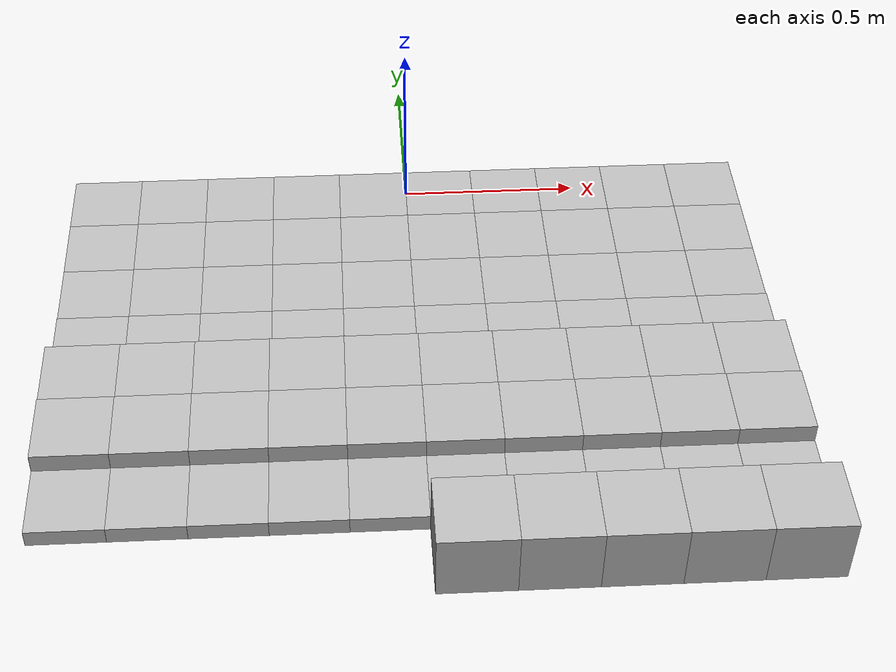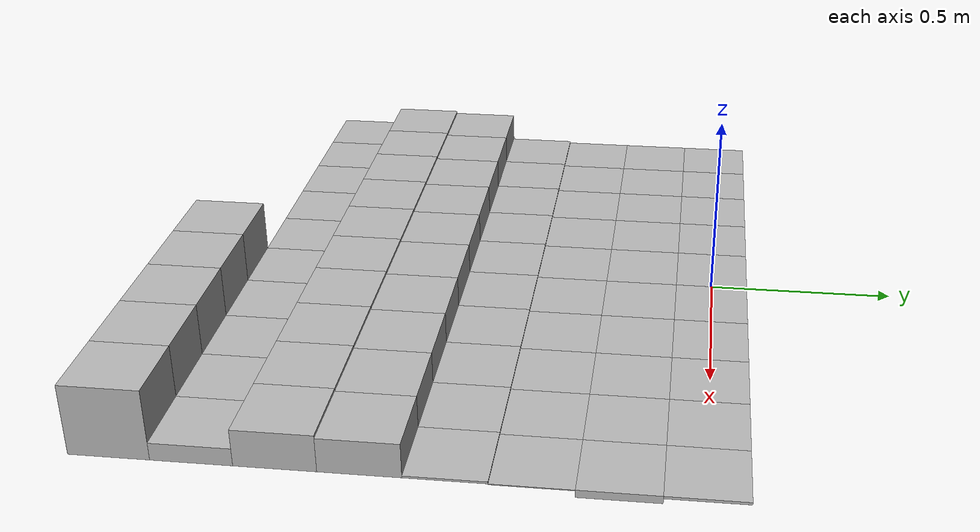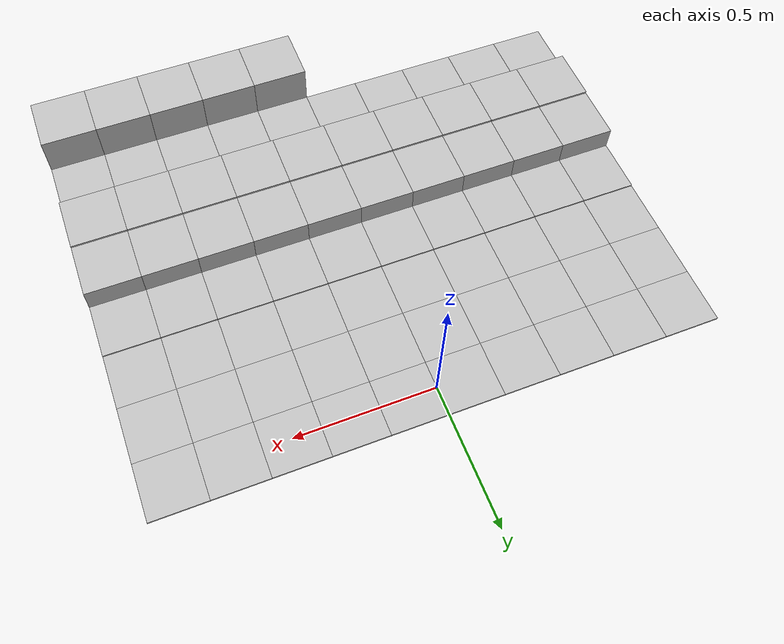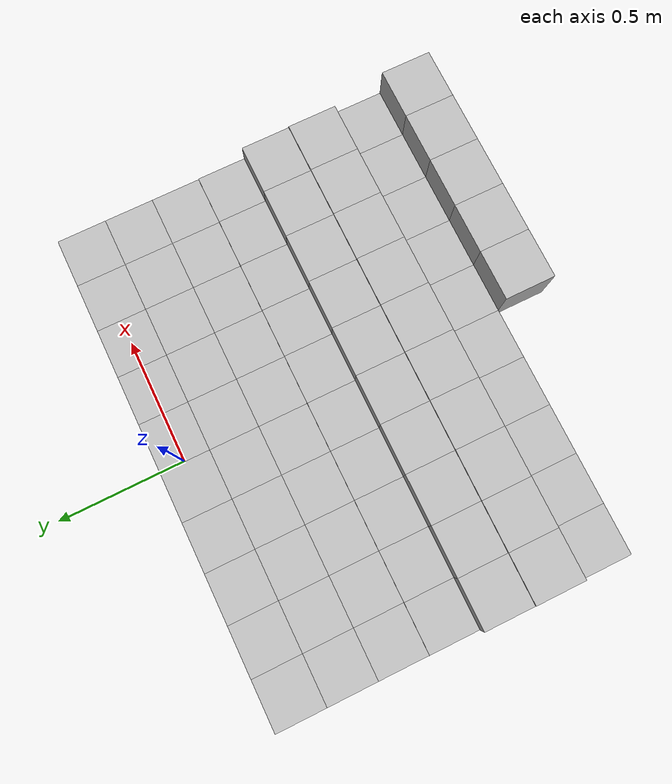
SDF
<sdf version="1.6">
 <model name="Terrain">
  <static>true</static>
  <link name="box_0_0">
   <pose>-0.9 0.0 -0.00342435105275 0 0 0</pose>
   <inertial>
    <mass>1.0</mass>
    <inertia><ixx>0.0</ixx><ixy>0.0</ixy><ixz>0.0</ixz><iyy>0.0</iyy><iyz>0.0</iyz><izz>0.0</izz></inertia>
   </inertial>
   <collision name="collision"><geometry><box><size>0.2 0.2 -0.0068487021055</size></box></geometry></collision>
   <visual name="visual"><geometry><box><size>0.2 0.2 -0.0068487021055</size></box></geometry></visual>
  </link>
  <link name="box_0_1">
   <pose>-0.7 0.0 -0.00342435105275 0 0 0</pose>
   <inertial>
    <mass>1.0</mass>
    <inertia><ixx>0.0</ixx><ixy>0.0</ixy><ixz>0.0</ixz><iyy>0.0</iyy><iyz>0.0</iyz><izz>0.0</izz></inertia>
   </inertial>
   <collision name="collision"><geometry><box><size>0.2 0.2 -0.0068487021055</size></box></geometry></collision>
   <visual name="visual"><geometry><box><size>0.2 0.2 -0.0068487021055</size></box></geometry></visual>
  </link>
  <link name="box_0_2">
   <pose>-0.5 0.0 -0.00342435105275 0 0 0</pose>
   <inertial>
    <mass>1.0</mass>
    <inertia><ixx>0.0</ixx><ixy>0.0</ixy><ixz>0.0</ixz><iyy>0.0</iyy><iyz>0.0</iyz><izz>0.0</izz></inertia>
   </inertial>
   <collision name="collision"><geometry><box><size>0.2 0.2 -0.0068487021055</size></box></geometry></collision>
   <visual name="visual"><geometry><box><size>0.2 0.2 -0.0068487021055</size></box></geometry></visual>
  </link>
  <link name="box_0_3">
   <pose>-0.3 0.0 -0.00342435105275 0 0 0</pose>
   <inertial>
    <mass>1.0</mass>
    <inertia><ixx>0.0</ixx><ixy>0.0</ixy><ixz>0.0</ixz><iyy>0.0</iyy><iyz>0.0</iyz><izz>0.0</izz></inertia>
   </inertial>
   <collision name="collision"><geometry><box><size>0.2 0.2 -0.0068487021055</size></box></geometry></collision>
   <visual name="visual"><geometry><box><size>0.2 0.2 -0.0068487021055</size></box></geometry></visual>
  </link>
  <link name="box_0_4">
   <pose>-0.1 0.0 -0.00342435105275 0 0 0</pose>
   <inertial>
    <mass>1.0</mass>
    <inertia><ixx>0.0</ixx><ixy>0.0</ixy><ixz>0.0</ixz><iyy>0.0</iyy><iyz>0.0</iyz><izz>0.0</izz></inertia>
   </inertial>
   <collision name="collision"><geometry><box><size>0.2 0.2 -0.0068487021055</size></box></geometry></collision>
   <visual name="visual"><geometry><box><size>0.2 0.2 -0.0068487021055</size></box></geometry></visual>
  </link>
  <link name="box_0_5">
   <pose>0.1 0.0 -0.00342435105275 0 0 0</pose>
   <inertial>
    <mass>1.0</mass>
    <inertia><ixx>0.0</ixx><ixy>0.0</ixy><ixz>0.0</ixz><iyy>0.0</iyy><iyz>0.0</iyz><izz>0.0</izz></inertia>
   </inertial>
   <collision name="collision"><geometry><box><size>0.2 0.2 -0.0068487021055</size></box></geometry></collision>
   <visual name="visual"><geometry><box><size>0.2 0.2 -0.0068487021055</size></box></geometry></visual>
  </link>
  <link name="box_0_6">
   <pose>0.3 0.0 -0.00342435105275 0 0 0</pose>
   <inertial>
    <mass>1.0</mass>
    <inertia><ixx>0.0</ixx><ixy>0.0</ixy><ixz>0.0</ixz><iyy>0.0</iyy><iyz>0.0</iyz><izz>0.0</izz></inertia>
   </inertial>
   <collision name="collision"><geometry><box><size>0.2 0.2 -0.0068487021055</size></box></geometry></collision>
   <visual name="visual"><geometry><box><size>0.2 0.2 -0.0068487021055</size></box></geometry></visual>
  </link>
  <link name="box_0_7">
   <pose>0.5 0.0 -0.00342435105275 0 0 0</pose>
   <inertial>
    <mass>1.0</mass>
    <inertia><ixx>0.0</ixx><ixy>0.0</ixy><ixz>0.0</ixz><iyy>0.0</iyy><iyz>0.0</iyz><izz>0.0</izz></inertia>
   </inertial>
   <collision name="collision"><geometry><box><size>0.2 0.2 -0.0068487021055</size></box></geometry></collision>
   <visual name="visual"><geometry><box><size>0.2 0.2 -0.0068487021055</size></box></geometry></visual>
  </link>
  <link name="box_0_8">
   <pose>0.7 0.0 -0.00342435105275 0 0 0</pose>
   <inertial>
    <mass>1.0</mass>
    <inertia><ixx>0.0</ixx><ixy>0.0</ixy><ixz>0.0</ixz><iyy>0.0</iyy><iyz>0.0</iyz><izz>0.0</izz></inertia>
   </inertial>
   <collision name="collision"><geometry><box><size>0.2 0.2 -0.0068487021055</size></box></geometry></collision>
   <visual name="visual"><geometry><box><size>0.2 0.2 -0.0068487021055</size></box></geometry></visual>
  </link>
  <link name="box_0_9">
   <pose>0.9 0.0 -0.00342435105275 0 0 0</pose>
   <inertial>
    <mass>1.0</mass>
    <inertia><ixx>0.0</ixx><ixy>0.0</ixy><ixz>0.0</ixz><iyy>0.0</iyy><iyz>0.0</iyz><izz>0.0</izz></inertia>
   </inertial>
   <collision name="collision"><geometry><box><size>0.2 0.2 -0.0068487021055</size></box></geometry></collision>
   <visual name="visual"><geometry><box><size>0.2 0.2 -0.0068487021055</size></box></geometry></visual>
  </link>
  <link name="box_1_0">
   <pose>-0.9 -0.2 -0.0102960679637 0 0 0</pose>
   <inertial>
    <mass>1.0</mass>
    <inertia><ixx>0.0</ixx><ixy>0.0</ixy><ixz>0.0</ixz><iyy>0.0</iyy><iyz>0.0</iyz><izz>0.0</izz></inertia>
   </inertial>
   <collision name="collision"><geometry><box><size>0.2 0.2 -0.0205921359273</size></box></geometry></collision>
   <visual name="visual"><geometry><box><size>0.2 0.2 -0.0205921359273</size></box></geometry></visual>
  </link>
  <link name="box_1_1">
   <pose>-0.7 -0.2 -0.0102960679637 0 0 0</pose>
   <inertial>
    <mass>1.0</mass>
    <inertia><ixx>0.0</ixx><ixy>0.0</ixy><ixz>0.0</ixz><iyy>0.0</iyy><iyz>0.0</iyz><izz>0.0</izz></inertia>
   </inertial>
   <collision name="collision"><geometry><box><size>0.2 0.2 -0.0205921359273</size></box></geometry></collision>
   <visual name="visual"><geometry><box><size>0.2 0.2 -0.0205921359273</size></box></geometry></visual>
  </link>
  <link name="box_1_2">
   <pose>-0.5 -0.2 -0.0102960679637 0 0 0</pose>
   <inertial>
    <mass>1.0</mass>
    <inertia><ixx>0.0</ixx><ixy>0.0</ixy><ixz>0.0</ixz><iyy>0.0</iyy><iyz>0.0</iyz><izz>0.0</izz></inertia>
   </inertial>
   <collision name="collision"><geometry><box><size>0.2 0.2 -0.0205921359273</size></box></geometry></collision>
   <visual name="visual"><geometry><box><size>0.2 0.2 -0.0205921359273</size></box></geometry></visual>
  </link>
  <link name="box_1_3">
   <pose>-0.3 -0.2 -0.0102960679637 0 0 0</pose>
   <inertial>
    <mass>1.0</mass>
    <inertia><ixx>0.0</ixx><ixy>0.0</ixy><ixz>0.0</ixz><iyy>0.0</iyy><iyz>0.0</iyz><izz>0.0</izz></inertia>
   </inertial>
   <collision name="collision"><geometry><box><size>0.2 0.2 -0.0205921359273</size></box></geometry></collision>
   <visual name="visual"><geometry><box><size>0.2 0.2 -0.0205921359273</size></box></geometry></visual>
  </link>
  <link name="box_1_4">
   <pose>-0.1 -0.2 -0.0102960679637 0 0 0</pose>
   <inertial>
    <mass>1.0</mass>
    <inertia><ixx>0.0</ixx><ixy>0.0</ixy><ixz>0.0</ixz><iyy>0.0</iyy><iyz>0.0</iyz><izz>0.0</izz></inertia>
   </inertial>
   <collision name="collision"><geometry><box><size>0.2 0.2 -0.0205921359273</size></box></geometry></collision>
   <visual name="visual"><geometry><box><size>0.2 0.2 -0.0205921359273</size></box></geometry></visual>
  </link>
  <link name="box_1_5">
   <pose>0.1 -0.2 -0.0102960679637 0 0 0</pose>
   <inertial>
    <mass>1.0</mass>
    <inertia><ixx>0.0</ixx><ixy>0.0</ixy><ixz>0.0</ixz><iyy>0.0</iyy><iyz>0.0</iyz><izz>0.0</izz></inertia>
   </inertial>
   <collision name="collision"><geometry><box><size>0.2 0.2 -0.0205921359273</size></box></geometry></collision>
   <visual name="visual"><geometry><box><size>0.2 0.2 -0.0205921359273</size></box></geometry></visual>
  </link>
  <link name="box_1_6">
   <pose>0.3 -0.2 -0.0102960679637 0 0 0</pose>
   <inertial>
    <mass>1.0</mass>
    <inertia><ixx>0.0</ixx><ixy>0.0</ixy><ixz>0.0</ixz><iyy>0.0</iyy><iyz>0.0</iyz><izz>0.0</izz></inertia>
   </inertial>
   <collision name="collision"><geometry><box><size>0.2 0.2 -0.0205921359273</size></box></geometry></collision>
   <visual name="visual"><geometry><box><size>0.2 0.2 -0.0205921359273</size></box></geometry></visual>
  </link>
  <link name="box_1_7">
   <pose>0.5 -0.2 -0.0102960679637 0 0 0</pose>
   <inertial>
    <mass>1.0</mass>
    <inertia><ixx>0.0</ixx><ixy>0.0</ixy><ixz>0.0</ixz><iyy>0.0</iyy><iyz>0.0</iyz><izz>0.0</izz></inertia>
   </inertial>
   <collision name="collision"><geometry><box><size>0.2 0.2 -0.0205921359273</size></box></geometry></collision>
   <visual name="visual"><geometry><box><size>0.2 0.2 -0.0205921359273</size></box></geometry></visual>
  </link>
  <link name="box_1_8">
   <pose>0.7 -0.2 -0.0102960679637 0 0 0</pose>
   <inertial>
    <mass>1.0</mass>
    <inertia><ixx>0.0</ixx><ixy>0.0</ixy><ixz>0.0</ixz><iyy>0.0</iyy><iyz>0.0</iyz><izz>0.0</izz></inertia>
   </inertial>
   <collision name="collision"><geometry><box><size>0.2 0.2 -0.0205921359273</size></box></geometry></collision>
   <visual name="visual"><geometry><box><size>0.2 0.2 -0.0205921359273</size></box></geometry></visual>
  </link>
  <link name="box_1_9">
   <pose>0.9 -0.2 -0.0102960679637 0 0 0</pose>
   <inertial>
    <mass>1.0</mass>
    <inertia><ixx>0.0</ixx><ixy>0.0</ixy><ixz>0.0</ixz><iyy>0.0</iyy><iyz>0.0</iyz><izz>0.0</izz></inertia>
   </inertial>
   <collision name="collision"><geometry><box><size>0.2 0.2 -0.0205921359273</size></box></geometry></collision>
   <visual name="visual"><geometry><box><size>0.2 0.2 -0.0205921359273</size></box></geometry></visual>
  </link>
  <link name="box_2_0">
   <pose>-0.9 -0.4 -0.00111576442985 0 0 0</pose>
   <inertial>
    <mass>1.0</mass>
    <inertia><ixx>0.0</ixx><ixy>0.0</ixy><ixz>0.0</ixz><iyy>0.0</iyy><iyz>0.0</iyz><izz>0.0</izz></inertia>
   </inertial>
   <collision name="collision"><geometry><box><size>0.2 0.2 -0.0022315288597</size></box></geometry></collision>
   <visual name="visual"><geometry><box><size>0.2 0.2 -0.0022315288597</size></box></geometry></visual>
  </link>
  <link name="box_2_1">
   <pose>-0.7 -0.4 -0.00111576442985 0 0 0</pose>
   <inertial>
    <mass>1.0</mass>
    <inertia><ixx>0.0</ixx><ixy>0.0</ixy><ixz>0.0</ixz><iyy>0.0</iyy><iyz>0.0</iyz><izz>0.0</izz></inertia>
   </inertial>
   <collision name="collision"><geometry><box><size>0.2 0.2 -0.0022315288597</size></box></geometry></collision>
   <visual name="visual"><geometry><box><size>0.2 0.2 -0.0022315288597</size></box></geometry></visual>
  </link>
  <link name="box_2_2">
   <pose>-0.5 -0.4 -0.00111576442985 0 0 0</pose>
   <inertial>
    <mass>1.0</mass>
    <inertia><ixx>0.0</ixx><ixy>0.0</ixy><ixz>0.0</ixz><iyy>0.0</iyy><iyz>0.0</iyz><izz>0.0</izz></inertia>
   </inertial>
   <collision name="collision"><geometry><box><size>0.2 0.2 -0.0022315288597</size></box></geometry></collision>
   <visual name="visual"><geometry><box><size>0.2 0.2 -0.0022315288597</size></box></geometry></visual>
  </link>
  <link name="box_2_3">
   <pose>-0.3 -0.4 -0.00111576442985 0 0 0</pose>
   <inertial>
    <mass>1.0</mass>
    <inertia><ixx>0.0</ixx><ixy>0.0</ixy><ixz>0.0</ixz><iyy>0.0</iyy><iyz>0.0</iyz><izz>0.0</izz></inertia>
   </inertial>
   <collision name="collision"><geometry><box><size>0.2 0.2 -0.0022315288597</size></box></geometry></collision>
   <visual name="visual"><geometry><box><size>0.2 0.2 -0.0022315288597</size></box></geometry></visual>
  </link>
  <link name="box_2_4">
   <pose>-0.1 -0.4 -0.00111576442985 0 0 0</pose>
   <inertial>
    <mass>1.0</mass>
    <inertia><ixx>0.0</ixx><ixy>0.0</ixy><ixz>0.0</ixz><iyy>0.0</iyy><iyz>0.0</iyz><izz>0.0</izz></inertia>
   </inertial>
   <collision name="collision"><geometry><box><size>0.2 0.2 -0.0022315288597</size></box></geometry></collision>
   <visual name="visual"><geometry><box><size>0.2 0.2 -0.0022315288597</size></box></geometry></visual>
  </link>
  <link name="box_2_5">
   <pose>0.1 -0.4 -0.00111576442985 0 0 0</pose>
   <inertial>
    <mass>1.0</mass>
    <inertia><ixx>0.0</ixx><ixy>0.0</ixy><ixz>0.0</ixz><iyy>0.0</iyy><iyz>0.0</iyz><izz>0.0</izz></inertia>
   </inertial>
   <collision name="collision"><geometry><box><size>0.2 0.2 -0.0022315288597</size></box></geometry></collision>
   <visual name="visual"><geometry><box><size>0.2 0.2 -0.0022315288597</size></box></geometry></visual>
  </link>
  <link name="box_2_6">
   <pose>0.3 -0.4 -0.00111576442985 0 0 0</pose>
   <inertial>
    <mass>1.0</mass>
    <inertia><ixx>0.0</ixx><ixy>0.0</ixy><ixz>0.0</ixz><iyy>0.0</iyy><iyz>0.0</iyz><izz>0.0</izz></inertia>
   </inertial>
   <collision name="collision"><geometry><box><size>0.2 0.2 -0.0022315288597</size></box></geometry></collision>
   <visual name="visual"><geometry><box><size>0.2 0.2 -0.0022315288597</size></box></geometry></visual>
  </link>
  <link name="box_2_7">
   <pose>0.5 -0.4 -0.00111576442985 0 0 0</pose>
   <inertial>
    <mass>1.0</mass>
    <inertia><ixx>0.0</ixx><ixy>0.0</ixy><ixz>0.0</ixz><iyy>0.0</iyy><iyz>0.0</iyz><izz>0.0</izz></inertia>
   </inertial>
   <collision name="collision"><geometry><box><size>0.2 0.2 -0.0022315288597</size></box></geometry></collision>
   <visual name="visual"><geometry><box><size>0.2 0.2 -0.0022315288597</size></box></geometry></visual>
  </link>
  <link name="box_2_8">
   <pose>0.7 -0.4 -0.00111576442985 0 0 0</pose>
   <inertial>
    <mass>1.0</mass>
    <inertia><ixx>0.0</ixx><ixy>0.0</ixy><ixz>0.0</ixz><iyy>0.0</iyy><iyz>0.0</iyz><izz>0.0</izz></inertia>
   </inertial>
   <collision name="collision"><geometry><box><size>0.2 0.2 -0.0022315288597</size></box></geometry></collision>
   <visual name="visual"><geometry><box><size>0.2 0.2 -0.0022315288597</size></box></geometry></visual>
  </link>
  <link name="box_2_9">
   <pose>0.9 -0.4 -0.00111576442985 0 0 0</pose>
   <inertial>
    <mass>1.0</mass>
    <inertia><ixx>0.0</ixx><ixy>0.0</ixy><ixz>0.0</ixz><iyy>0.0</iyy><iyz>0.0</iyz><izz>0.0</izz></inertia>
   </inertial>
   <collision name="collision"><geometry><box><size>0.2 0.2 -0.0022315288597</size></box></geometry></collision>
   <visual name="visual"><geometry><box><size>0.2 0.2 -0.0022315288597</size></box></geometry></visual>
  </link>
  <link name="box_3_0">
   <pose>-0.9 -0.6 0.0026906053036 0 0 0</pose>
   <inertial>
    <mass>1.0</mass>
    <inertia><ixx>0.0</ixx><ixy>0.0</ixy><ixz>0.0</ixz><iyy>0.0</iyy><iyz>0.0</iyz><izz>0.0</izz></inertia>
   </inertial>
   <collision name="collision"><geometry><box><size>0.2 0.2 0.00538121060721</size></box></geometry></collision>
   <visual name="visual"><geometry><box><size>0.2 0.2 0.00538121060721</size></box></geometry></visual>
  </link>
  <link name="box_3_1">
   <pose>-0.7 -0.6 0.0026906053036 0 0 0</pose>
   <inertial>
    <mass>1.0</mass>
    <inertia><ixx>0.0</ixx><ixy>0.0</ixy><ixz>0.0</ixz><iyy>0.0</iyy><iyz>0.0</iyz><izz>0.0</izz></inertia>
   </inertial>
   <collision name="collision"><geometry><box><size>0.2 0.2 0.00538121060721</size></box></geometry></collision>
   <visual name="visual"><geometry><box><size>0.2 0.2 0.00538121060721</size></box></geometry></visual>
  </link>
  <link name="box_3_2">
   <pose>-0.5 -0.6 0.0026906053036 0 0 0</pose>
   <inertial>
    <mass>1.0</mass>
    <inertia><ixx>0.0</ixx><ixy>0.0</ixy><ixz>0.0</ixz><iyy>0.0</iyy><iyz>0.0</iyz><izz>0.0</izz></inertia>
   </inertial>
   <collision name="collision"><geometry><box><size>0.2 0.2 0.00538121060721</size></box></geometry></collision>
   <visual name="visual"><geometry><box><size>0.2 0.2 0.00538121060721</size></box></geometry></visual>
  </link>
  <link name="box_3_3">
   <pose>-0.3 -0.6 0.0026906053036 0 0 0</pose>
   <inertial>
    <mass>1.0</mass>
    <inertia><ixx>0.0</ixx><ixy>0.0</ixy><ixz>0.0</ixz><iyy>0.0</iyy><iyz>0.0</iyz><izz>0.0</izz></inertia>
   </inertial>
   <collision name="collision"><geometry><box><size>0.2 0.2 0.00538121060721</size></box></geometry></collision>
   <visual name="visual"><geometry><box><size>0.2 0.2 0.00538121060721</size></box></geometry></visual>
  </link>
  <link name="box_3_4">
   <pose>-0.1 -0.6 0.0026906053036 0 0 0</pose>
   <inertial>
    <mass>1.0</mass>
    <inertia><ixx>0.0</ixx><ixy>0.0</ixy><ixz>0.0</ixz><iyy>0.0</iyy><iyz>0.0</iyz><izz>0.0</izz></inertia>
   </inertial>
   <collision name="collision"><geometry><box><size>0.2 0.2 0.00538121060721</size></box></geometry></collision>
   <visual name="visual"><geometry><box><size>0.2 0.2 0.00538121060721</size></box></geometry></visual>
  </link>
  <link name="box_3_5">
   <pose>0.1 -0.6 0.0026906053036 0 0 0</pose>
   <inertial>
    <mass>1.0</mass>
    <inertia><ixx>0.0</ixx><ixy>0.0</ixy><ixz>0.0</ixz><iyy>0.0</iyy><iyz>0.0</iyz><izz>0.0</izz></inertia>
   </inertial>
   <collision name="collision"><geometry><box><size>0.2 0.2 0.00538121060721</size></box></geometry></collision>
   <visual name="visual"><geometry><box><size>0.2 0.2 0.00538121060721</size></box></geometry></visual>
  </link>
  <link name="box_3_6">
   <pose>0.3 -0.6 0.0026906053036 0 0 0</pose>
   <inertial>
    <mass>1.0</mass>
    <inertia><ixx>0.0</ixx><ixy>0.0</ixy><ixz>0.0</ixz><iyy>0.0</iyy><iyz>0.0</iyz><izz>0.0</izz></inertia>
   </inertial>
   <collision name="collision"><geometry><box><size>0.2 0.2 0.00538121060721</size></box></geometry></collision>
   <visual name="visual"><geometry><box><size>0.2 0.2 0.00538121060721</size></box></geometry></visual>
  </link>
  <link name="box_3_7">
   <pose>0.5 -0.6 0.0026906053036 0 0 0</pose>
   <inertial>
    <mass>1.0</mass>
    <inertia><ixx>0.0</ixx><ixy>0.0</ixy><ixz>0.0</ixz><iyy>0.0</iyy><iyz>0.0</iyz><izz>0.0</izz></inertia>
   </inertial>
   <collision name="collision"><geometry><box><size>0.2 0.2 0.00538121060721</size></box></geometry></collision>
   <visual name="visual"><geometry><box><size>0.2 0.2 0.00538121060721</size></box></geometry></visual>
  </link>
  <link name="box_3_8">
   <pose>0.7 -0.6 0.0026906053036 0 0 0</pose>
   <inertial>
    <mass>1.0</mass>
    <inertia><ixx>0.0</ixx><ixy>0.0</ixy><ixz>0.0</ixz><iyy>0.0</iyy><iyz>0.0</iyz><izz>0.0</izz></inertia>
   </inertial>
   <collision name="collision"><geometry><box><size>0.2 0.2 0.00538121060721</size></box></geometry></collision>
   <visual name="visual"><geometry><box><size>0.2 0.2 0.00538121060721</size></box></geometry></visual>
  </link>
  <link name="box_3_9">
   <pose>0.9 -0.6 0.0026906053036 0 0 0</pose>
   <inertial>
    <mass>1.0</mass>
    <inertia><ixx>0.0</ixx><ixy>0.0</ixy><ixz>0.0</ixz><iyy>0.0</iyy><iyz>0.0</iyz><izz>0.0</izz></inertia>
   </inertial>
   <collision name="collision"><geometry><box><size>0.2 0.2 0.00538121060721</size></box></geometry></collision>
   <visual name="visual"><geometry><box><size>0.2 0.2 0.00538121060721</size></box></geometry></visual>
  </link>
  <link name="box_4_0">
   <pose>-0.9 -0.8 0.0464646513517 0 0 0</pose>
   <inertial>
    <mass>1.0</mass>
    <inertia><ixx>0.0</ixx><ixy>0.0</ixy><ixz>0.0</ixz><iyy>0.0</iyy><iyz>0.0</iyz><izz>0.0</izz></inertia>
   </inertial>
   <collision name="collision"><geometry><box><size>0.2 0.2 0.0929293027034</size></box></geometry></collision>
   <visual name="visual"><geometry><box><size>0.2 0.2 0.0929293027034</size></box></geometry></visual>
  </link>
  <link name="box_4_1">
   <pose>-0.7 -0.8 0.0464646513517 0 0 0</pose>
   <inertial>
    <mass>1.0</mass>
    <inertia><ixx>0.0</ixx><ixy>0.0</ixy><ixz>0.0</ixz><iyy>0.0</iyy><iyz>0.0</iyz><izz>0.0</izz></inertia>
   </inertial>
   <collision name="collision"><geometry><box><size>0.2 0.2 0.0929293027034</size></box></geometry></collision>
   <visual name="visual"><geometry><box><size>0.2 0.2 0.0929293027034</size></box></geometry></visual>
  </link>
  <link name="box_4_2">
   <pose>-0.5 -0.8 0.0464646513517 0 0 0</pose>
   <inertial>
    <mass>1.0</mass>
    <inertia><ixx>0.0</ixx><ixy>0.0</ixy><ixz>0.0</ixz><iyy>0.0</iyy><iyz>0.0</iyz><izz>0.0</izz></inertia>
   </inertial>
   <collision name="collision"><geometry><box><size>0.2 0.2 0.0929293027034</size></box></geometry></collision>
   <visual name="visual"><geometry><box><size>0.2 0.2 0.0929293027034</size></box></geometry></visual>
  </link>
  <link name="box_4_3">
   <pose>-0.3 -0.8 0.0464646513517 0 0 0</pose>
   <inertial>
    <mass>1.0</mass>
    <inertia><ixx>0.0</ixx><ixy>0.0</ixy><ixz>0.0</ixz><iyy>0.0</iyy><iyz>0.0</iyz><izz>0.0</izz></inertia>
   </inertial>
   <collision name="collision"><geometry><box><size>0.2 0.2 0.0929293027034</size></box></geometry></collision>
   <visual name="visual"><geometry><box><size>0.2 0.2 0.0929293027034</size></box></geometry></visual>
  </link>
  <link name="box_4_4">
   <pose>-0.1 -0.8 0.0464646513517 0 0 0</pose>
   <inertial>
    <mass>1.0</mass>
    <inertia><ixx>0.0</ixx><ixy>0.0</ixy><ixz>0.0</ixz><iyy>0.0</iyy><iyz>0.0</iyz><izz>0.0</izz></inertia>
   </inertial>
   <collision name="collision"><geometry><box><size>0.2 0.2 0.0929293027034</size></box></geometry></collision>
   <visual name="visual"><geometry><box><size>0.2 0.2 0.0929293027034</size></box></geometry></visual>
  </link>
  <link name="box_4_5">
   <pose>0.1 -0.8 0.0464646513517 0 0 0</pose>
   <inertial>
    <mass>1.0</mass>
    <inertia><ixx>0.0</ixx><ixy>0.0</ixy><ixz>0.0</ixz><iyy>0.0</iyy><iyz>0.0</iyz><izz>0.0</izz></inertia>
   </inertial>
   <collision name="collision"><geometry><box><size>0.2 0.2 0.0929293027034</size></box></geometry></collision>
   <visual name="visual"><geometry><box><size>0.2 0.2 0.0929293027034</size></box></geometry></visual>
  </link>
  <link name="box_4_6">
   <pose>0.3 -0.8 0.0464646513517 0 0 0</pose>
   <inertial>
    <mass>1.0</mass>
    <inertia><ixx>0.0</ixx><ixy>0.0</ixy><ixz>0.0</ixz><iyy>0.0</iyy><iyz>0.0</iyz><izz>0.0</izz></inertia>
   </inertial>
   <collision name="collision"><geometry><box><size>0.2 0.2 0.0929293027034</size></box></geometry></collision>
   <visual name="visual"><geometry><box><size>0.2 0.2 0.0929293027034</size></box></geometry></visual>
  </link>
  <link name="box_4_7">
   <pose>0.5 -0.8 0.0464646513517 0 0 0</pose>
   <inertial>
    <mass>1.0</mass>
    <inertia><ixx>0.0</ixx><ixy>0.0</ixy><ixz>0.0</ixz><iyy>0.0</iyy><iyz>0.0</iyz><izz>0.0</izz></inertia>
   </inertial>
   <collision name="collision"><geometry><box><size>0.2 0.2 0.0929293027034</size></box></geometry></collision>
   <visual name="visual"><geometry><box><size>0.2 0.2 0.0929293027034</size></box></geometry></visual>
  </link>
  <link name="box_4_8">
   <pose>0.7 -0.8 0.0464646513517 0 0 0</pose>
   <inertial>
    <mass>1.0</mass>
    <inertia><ixx>0.0</ixx><ixy>0.0</ixy><ixz>0.0</ixz><iyy>0.0</iyy><iyz>0.0</iyz><izz>0.0</izz></inertia>
   </inertial>
   <collision name="collision"><geometry><box><size>0.2 0.2 0.0929293027034</size></box></geometry></collision>
   <visual name="visual"><geometry><box><size>0.2 0.2 0.0929293027034</size></box></geometry></visual>
  </link>
  <link name="box_4_9">
   <pose>0.9 -0.8 0.0464646513517 0 0 0</pose>
   <inertial>
    <mass>1.0</mass>
    <inertia><ixx>0.0</ixx><ixy>0.0</ixy><ixz>0.0</ixz><iyy>0.0</iyy><iyz>0.0</iyz><izz>0.0</izz></inertia>
   </inertial>
   <collision name="collision"><geometry><box><size>0.2 0.2 0.0929293027034</size></box></geometry></collision>
   <visual name="visual"><geometry><box><size>0.2 0.2 0.0929293027034</size></box></geometry></visual>
  </link>
  <link name="box_5_0">
   <pose>-0.9 -1.0 0.050129768945 0 0 0</pose>
   <inertial>
    <mass>1.0</mass>
    <inertia><ixx>0.0</ixx><ixy>0.0</ixy><ixz>0.0</ixz><iyy>0.0</iyy><iyz>0.0</iyz><izz>0.0</izz></inertia>
   </inertial>
   <collision name="collision"><geometry><box><size>0.2 0.2 0.10025953789</size></box></geometry></collision>
   <visual name="visual"><geometry><box><size>0.2 0.2 0.10025953789</size></box></geometry></visual>
  </link>
  <link name="box_5_1">
   <pose>-0.7 -1.0 0.050129768945 0 0 0</pose>
   <inertial>
    <mass>1.0</mass>
    <inertia><ixx>0.0</ixx><ixy>0.0</ixy><ixz>0.0</ixz><iyy>0.0</iyy><iyz>0.0</iyz><izz>0.0</izz></inertia>
   </inertial>
   <collision name="collision"><geometry><box><size>0.2 0.2 0.10025953789</size></box></geometry></collision>
   <visual name="visual"><geometry><box><size>0.2 0.2 0.10025953789</size></box></geometry></visual>
  </link>
  <link name="box_5_2">
   <pose>-0.5 -1.0 0.050129768945 0 0 0</pose>
   <inertial>
    <mass>1.0</mass>
    <inertia><ixx>0.0</ixx><ixy>0.0</ixy><ixz>0.0</ixz><iyy>0.0</iyy><iyz>0.0</iyz><izz>0.0</izz></inertia>
   </inertial>
   <collision name="collision"><geometry><box><size>0.2 0.2 0.10025953789</size></box></geometry></collision>
   <visual name="visual"><geometry><box><size>0.2 0.2 0.10025953789</size></box></geometry></visual>
  </link>
  <link name="box_5_3">
   <pose>-0.3 -1.0 0.050129768945 0 0 0</pose>
   <inertial>
    <mass>1.0</mass>
    <inertia><ixx>0.0</ixx><ixy>0.0</ixy><ixz>0.0</ixz><iyy>0.0</iyy><iyz>0.0</iyz><izz>0.0</izz></inertia>
   </inertial>
   <collision name="collision"><geometry><box><size>0.2 0.2 0.10025953789</size></box></geometry></collision>
   <visual name="visual"><geometry><box><size>0.2 0.2 0.10025953789</size></box></geometry></visual>
  </link>
  <link name="box_5_4">
   <pose>-0.1 -1.0 0.050129768945 0 0 0</pose>
   <inertial>
    <mass>1.0</mass>
    <inertia><ixx>0.0</ixx><ixy>0.0</ixy><ixz>0.0</ixz><iyy>0.0</iyy><iyz>0.0</iyz><izz>0.0</izz></inertia>
   </inertial>
   <collision name="collision"><geometry><box><size>0.2 0.2 0.10025953789</size></box></geometry></collision>
   <visual name="visual"><geometry><box><size>0.2 0.2 0.10025953789</size></box></geometry></visual>
  </link>
  <link name="box_5_5">
   <pose>0.1 -1.0 0.050129768945 0 0 0</pose>
   <inertial>
    <mass>1.0</mass>
    <inertia><ixx>0.0</ixx><ixy>0.0</ixy><ixz>0.0</ixz><iyy>0.0</iyy><iyz>0.0</iyz><izz>0.0</izz></inertia>
   </inertial>
   <collision name="collision"><geometry><box><size>0.2 0.2 0.10025953789</size></box></geometry></collision>
   <visual name="visual"><geometry><box><size>0.2 0.2 0.10025953789</size></box></geometry></visual>
  </link>
  <link name="box_5_6">
   <pose>0.3 -1.0 0.050129768945 0 0 0</pose>
   <inertial>
    <mass>1.0</mass>
    <inertia><ixx>0.0</ixx><ixy>0.0</ixy><ixz>0.0</ixz><iyy>0.0</iyy><iyz>0.0</iyz><izz>0.0</izz></inertia>
   </inertial>
   <collision name="collision"><geometry><box><size>0.2 0.2 0.10025953789</size></box></geometry></collision>
   <visual name="visual"><geometry><box><size>0.2 0.2 0.10025953789</size></box></geometry></visual>
  </link>
  <link name="box_5_7">
   <pose>0.5 -1.0 0.050129768945 0 0 0</pose>
   <inertial>
    <mass>1.0</mass>
    <inertia><ixx>0.0</ixx><ixy>0.0</ixy><ixz>0.0</ixz><iyy>0.0</iyy><iyz>0.0</iyz><izz>0.0</izz></inertia>
   </inertial>
   <collision name="collision"><geometry><box><size>0.2 0.2 0.10025953789</size></box></geometry></collision>
   <visual name="visual"><geometry><box><size>0.2 0.2 0.10025953789</size></box></geometry></visual>
  </link>
  <link name="box_5_8">
   <pose>0.7 -1.0 0.050129768945 0 0 0</pose>
   <inertial>
    <mass>1.0</mass>
    <inertia><ixx>0.0</ixx><ixy>0.0</ixy><ixz>0.0</ixz><iyy>0.0</iyy><iyz>0.0</iyz><izz>0.0</izz></inertia>
   </inertial>
   <collision name="collision"><geometry><box><size>0.2 0.2 0.10025953789</size></box></geometry></collision>
   <visual name="visual"><geometry><box><size>0.2 0.2 0.10025953789</size></box></geometry></visual>
  </link>
  <link name="box_5_9">
   <pose>0.9 -1.0 0.050129768945 0 0 0</pose>
   <inertial>
    <mass>1.0</mass>
    <inertia><ixx>0.0</ixx><ixy>0.0</ixy><ixz>0.0</ixz><iyy>0.0</iyy><iyz>0.0</iyz><izz>0.0</izz></inertia>
   </inertial>
   <collision name="collision"><geometry><box><size>0.2 0.2 0.10025953789</size></box></geometry></collision>
   <visual name="visual"><geometry><box><size>0.2 0.2 0.10025953789</size></box></geometry></visual>
  </link>
  <link name="box_6_0">
   <pose>-0.9 -1.2 0.0238437271548 0 0 0</pose>
   <inertial>
    <mass>1.0</mass>
    <inertia><ixx>0.0</ixx><ixy>0.0</ixy><ixz>0.0</ixz><iyy>0.0</iyy><iyz>0.0</iyz><izz>0.0</izz></inertia>
   </inertial>
   <collision name="collision"><geometry><box><size>0.2 0.2 0.0476874543095</size></box></geometry></collision>
   <visual name="visual"><geometry><box><size>0.2 0.2 0.0476874543095</size></box></geometry></visual>
  </link>
  <link name="box_6_1">
   <pose>-0.7 -1.2 0.0238437271548 0 0 0</pose>
   <inertial>
    <mass>1.0</mass>
    <inertia><ixx>0.0</ixx><ixy>0.0</ixy><ixz>0.0</ixz><iyy>0.0</iyy><iyz>0.0</iyz><izz>0.0</izz></inertia>
   </inertial>
   <collision name="collision"><geometry><box><size>0.2 0.2 0.0476874543095</size></box></geometry></collision>
   <visual name="visual"><geometry><box><size>0.2 0.2 0.0476874543095</size></box></geometry></visual>
  </link>
  <link name="box_6_2">
   <pose>-0.5 -1.2 0.0238437271548 0 0 0</pose>
   <inertial>
    <mass>1.0</mass>
    <inertia><ixx>0.0</ixx><ixy>0.0</ixy><ixz>0.0</ixz><iyy>0.0</iyy><iyz>0.0</iyz><izz>0.0</izz></inertia>
   </inertial>
   <collision name="collision"><geometry><box><size>0.2 0.2 0.0476874543095</size></box></geometry></collision>
   <visual name="visual"><geometry><box><size>0.2 0.2 0.0476874543095</size></box></geometry></visual>
  </link>
  <link name="box_6_3">
   <pose>-0.3 -1.2 0.0238437271548 0 0 0</pose>
   <inertial>
    <mass>1.0</mass>
    <inertia><ixx>0.0</ixx><ixy>0.0</ixy><ixz>0.0</ixz><iyy>0.0</iyy><iyz>0.0</iyz><izz>0.0</izz></inertia>
   </inertial>
   <collision name="collision"><geometry><box><size>0.2 0.2 0.0476874543095</size></box></geometry></collision>
   <visual name="visual"><geometry><box><size>0.2 0.2 0.0476874543095</size></box></geometry></visual>
  </link>
  <link name="box_6_4">
   <pose>-0.1 -1.2 0.0238437271548 0 0 0</pose>
   <inertial>
    <mass>1.0</mass>
    <inertia><ixx>0.0</ixx><ixy>0.0</ixy><ixz>0.0</ixz><iyy>0.0</iyy><iyz>0.0</iyz><izz>0.0</izz></inertia>
   </inertial>
   <collision name="collision"><geometry><box><size>0.2 0.2 0.0476874543095</size></box></geometry></collision>
   <visual name="visual"><geometry><box><size>0.2 0.2 0.0476874543095</size></box></geometry></visual>
  </link>
  <link name="box_6_5">
   <pose>0.1 -1.2 0.0238437271548 0 0 0</pose>
   <inertial>
    <mass>1.0</mass>
    <inertia><ixx>0.0</ixx><ixy>0.0</ixy><ixz>0.0</ixz><iyy>0.0</iyy><iyz>0.0</iyz><izz>0.0</izz></inertia>
   </inertial>
   <collision name="collision"><geometry><box><size>0.2 0.2 0.0476874543095</size></box></geometry></collision>
   <visual name="visual"><geometry><box><size>0.2 0.2 0.0476874543095</size></box></geometry></visual>
  </link>
  <link name="box_6_6">
   <pose>0.3 -1.2 0.0238437271548 0 0 0</pose>
   <inertial>
    <mass>1.0</mass>
    <inertia><ixx>0.0</ixx><ixy>0.0</ixy><ixz>0.0</ixz><iyy>0.0</iyy><iyz>0.0</iyz><izz>0.0</izz></inertia>
   </inertial>
   <collision name="collision"><geometry><box><size>0.2 0.2 0.0476874543095</size></box></geometry></collision>
   <visual name="visual"><geometry><box><size>0.2 0.2 0.0476874543095</size></box></geometry></visual>
  </link>
  <link name="box_6_7">
   <pose>0.5 -1.2 0.0238437271548 0 0 0</pose>
   <inertial>
    <mass>1.0</mass>
    <inertia><ixx>0.0</ixx><ixy>0.0</ixy><ixz>0.0</ixz><iyy>0.0</iyy><iyz>0.0</iyz><izz>0.0</izz></inertia>
   </inertial>
   <collision name="collision"><geometry><box><size>0.2 0.2 0.0476874543095</size></box></geometry></collision>
   <visual name="visual"><geometry><box><size>0.2 0.2 0.0476874543095</size></box></geometry></visual>
  </link>
  <link name="box_6_8">
   <pose>0.7 -1.2 0.0238437271548 0 0 0</pose>
   <inertial>
    <mass>1.0</mass>
    <inertia><ixx>0.0</ixx><ixy>0.0</ixy><ixz>0.0</ixz><iyy>0.0</iyy><iyz>0.0</iyz><izz>0.0</izz></inertia>
   </inertial>
   <collision name="collision"><geometry><box><size>0.2 0.2 0.0476874543095</size></box></geometry></collision>
   <visual name="visual"><geometry><box><size>0.2 0.2 0.0476874543095</size></box></geometry></visual>
  </link>
  <link name="box_6_9">
   <pose>0.9 -1.2 0.0238437271548 0 0 0</pose>
   <inertial>
    <mass>1.0</mass>
    <inertia><ixx>0.0</ixx><ixy>0.0</ixy><ixz>0.0</ixz><iyy>0.0</iyy><iyz>0.0</iyz><izz>0.0</izz></inertia>
   </inertial>
   <collision name="collision"><geometry><box><size>0.2 0.2 0.0476874543095</size></box></geometry></collision>
   <visual name="visual"><geometry><box><size>0.2 0.2 0.0476874543095</size></box></geometry></visual>
  </link>
  <link name="box_7_5">
   <pose>0.1 -1.4 0.095913423902 0 0 0</pose>
   <inertial>
    <mass>1.0</mass>
    <inertia><ixx>0.0</ixx><ixy>0.0</ixy><ixz>0.0</ixz><iyy>0.0</iyy><iyz>0.0</iyz><izz>0.0</izz></inertia>
   </inertial>
   <collision name="collision"><geometry><box><size>0.2 0.2 0.191826847804</size></box></geometry></collision>
   <visual name="visual"><geometry><box><size>0.2 0.2 0.191826847804</size></box></geometry></visual>
  </link>
  <link name="box_7_6">
   <pose>0.3 -1.4 0.095913423902 0 0 0</pose>
   <inertial>
    <mass>1.0</mass>
    <inertia><ixx>0.0</ixx><ixy>0.0</ixy><ixz>0.0</ixz><iyy>0.0</iyy><iyz>0.0</iyz><izz>0.0</izz></inertia>
   </inertial>
   <collision name="collision"><geometry><box><size>0.2 0.2 0.191826847804</size></box></geometry></collision>
   <visual name="visual"><geometry><box><size>0.2 0.2 0.191826847804</size></box></geometry></visual>
  </link>
  <link name="box_7_7">
   <pose>0.5 -1.4 0.095913423902 0 0 0</pose>
   <inertial>
    <mass>1.0</mass>
    <inertia><ixx>0.0</ixx><ixy>0.0</ixy><ixz>0.0</ixz><iyy>0.0</iyy><iyz>0.0</iyz><izz>0.0</izz></inertia>
   </inertial>
   <collision name="collision"><geometry><box><size>0.2 0.2 0.191826847804</size></box></geometry></collision>
   <visual name="visual"><geometry><box><size>0.2 0.2 0.191826847804</size></box></geometry></visual>
  </link>
  <link name="box_7_8">
   <pose>0.7 -1.4 0.095913423902 0 0 0</pose>
   <inertial>
    <mass>1.0</mass>
    <inertia><ixx>0.0</ixx><ixy>0.0</ixy><ixz>0.0</ixz><iyy>0.0</iyy><iyz>0.0</iyz><izz>0.0</izz></inertia>
   </inertial>
   <collision name="collision"><geometry><box><size>0.2 0.2 0.191826847804</size></box></geometry></collision>
   <visual name="visual"><geometry><box><size>0.2 0.2 0.191826847804</size></box></geometry></visual>
  </link>
  <link name="box_7_9">
   <pose>0.9 -1.4 0.095913423902 0 0 0</pose>
   <inertial>
    <mass>1.0</mass>
    <inertia><ixx>0.0</ixx><ixy>0.0</ixy><ixz>0.0</ixz><iyy>0.0</iyy><iyz>0.0</iyz><izz>0.0</izz></inertia>
   </inertial>
   <collision name="collision"><geometry><box><size>0.2 0.2 0.191826847804</size></box></geometry></collision>
   <visual name="visual"><geometry><box><size>0.2 0.2 0.191826847804</size></box></geometry></visual>
  </link>
 </model>
</sdf>
